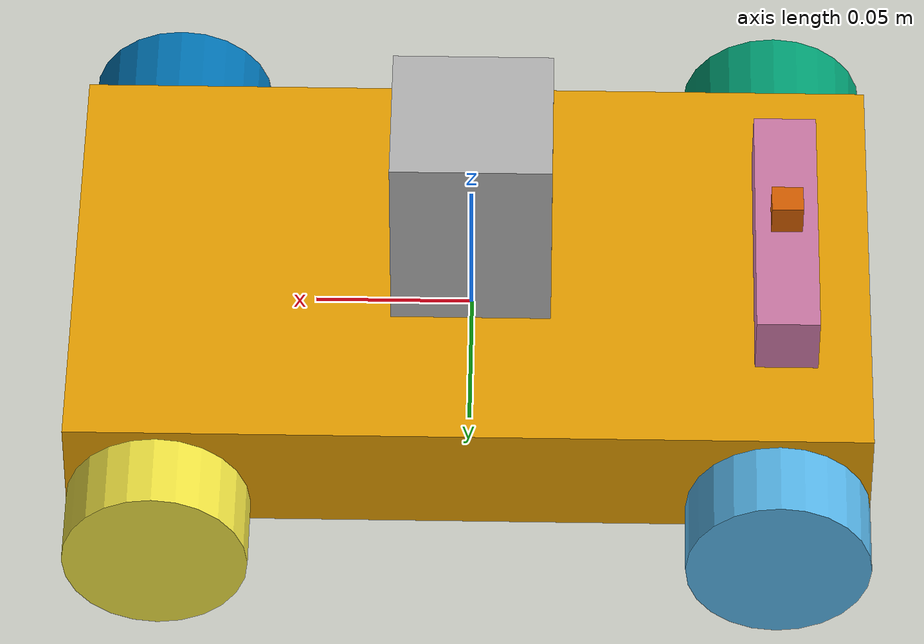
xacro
<?xml version="1.0"?>
<!-- property + name of model -->
<robot xmlns:xacro="http:www.ros.org/wiki/xacro" name= "isabelle">

<!-- CONSTANTS -->
    <xacro:property name="wheel_separation" value=""/>
    <xacro:property name="wheel_radius" value="0.02921"/>
    <xacro:property name="wheel_length" value=".0254"/>
    <xacro:property name="body_length" value="0.254"/>
    <xacro:property name="body_width" value="0.1524"/>
    <xacro:property name="body_height" value="0.04"/>
    <xacro:property name="imu_height" value=""/>
    <xacro:property name="imu_length" value=""/>
    <xacro:property name="imu_fov" value=""/>

    <xacro:macro name="default_wheel_inertial" params="mass">
            <inertial>
                    <mass value="${mass}" />
                    <mass value = ".045"/>
                <origin xyz = "0 0 0" rpy = "0 0 0"/>
                <inertia ixx = ".00007" ixy = "0" ixz = "0"
                        iyy = ".00007" iyz = "0" izz = ".000018375"/>
            </inertial>
    </xacro:macro>

<!-- CONSTANTS -->

<!-- LINKS & JOINTS -->
    <link name = "chassis">
        <visual name="visual">
            <origin xyz = "0 0 0" rpy = "0 0 0"/>
            <geometry>
                <box size = "${body_length} ${body_width} ${body_height}"/>
            </geometry>
        </visual>

        <collision name="collision">
            <origin xyz = "0 0 0" rpy = "0 0 0"/>
            <geometry>
                <box size = "${body_length} ${body_width} ${body_height}"/>
            </geometry>
        </collision>

        <inertial>
            <mass value = "0.68"/>
            <origin xyz = "0 0 0" rpy = "0 0 0"/>
            <inertia ixx = ".00140" ixy = "0" ixz = "0" iyy = ".00373" iyz = "0" izz = ".00495"/>
            <!-- inertias are tricky: http://wiki.ros.org/urdf/Tutorials/Adding%20Physical%20and%20Collision%20Properties%20to%20a%20URDF%20Model#Joint_Dynamics -->
        </inertial>

    </link>

    <!-- Back Wheels -->
    <xacro:macro name= "back_wheel" params="prefix reflect">
        <link name = "back_${prefix}_wheel">

            <visual name = "visual">
                <origin xyz = "0 0 0" rpy = "-1.5707 0 0"/>
                <geometry>
                    <cylinder radius = "${wheel_radius}" length = "${wheel_length}"/>
                </geometry>
            </visual>

            <collision name = "collision">
                <origin xyz = "0 0 0" rpy = "-1.5707 0 0"/>
                <geometry>
                    <cylinder radius = "${wheel_radius}" length = "${wheel_length}"/>
                </geometry>
            </collision>
            <xacro:default_wheel_inertial mass="0.045"/>

        </link>

        <joint name="back_${prefix}_wheel_hinge" type="continuous" >
            <parent link = "chassis"/>
            <child link = "back_${prefix}_wheel"/>
            <origin xyz ="-.09779 ${reflect * .09} -.01079" rpy = "0 0 0"/>
            <axis xyz = "0 1 0"/>
            <limit lower = "0" upper = "0" effort = "0" velocity = "0"/>
        </joint>
    </xacro:macro>
    <xacro:back_wheel prefix="right" reflect ="1"/>
    <xacro:back_wheel prefix="left" reflect ="-1"/>
    <!-- Back Wheels -->

    <!-- Front Wheels -->
     <xacro:macro name= "front_wheel" params="prefix reflect">
        <link name = "front_${prefix}_wheel">
            <visual name = "visual">
                <origin xyz = "0 0 0" rpy = "-1.5707 0 0"/>
                <geometry>
                    <cylinder radius = "${wheel_radius}" length = "${wheel_length}"/>
                </geometry>
            </visual>

            <collision name = "collision">
                <origin xyz = "0 0 0" rpy = "-1.5707 0 0"/>
                <geometry>
                    <cylinder radius = "${wheel_radius}" length = "${wheel_length}"/>
                </geometry>
            </collision>
            <xacro:default_wheel_inertial mass="0.045"/>
        </link>

        <joint name ="front_${prefix}_wheel_hinge" type = "continuous">
                <parent link = "chassis"/>
                <child link = "front_${prefix}_wheel"/>
                <origin xyz =".09779 ${reflect * .09} -.01079" rpy = "0 0 0"/>
                <axis xyz = "0 1 0"/>
                <limit lower = "0" upper = "0" effort = "0" velocity = "0"/>
        </joint>
    </xacro:macro>
    <xacro:front_wheel prefix="right" reflect ="1"/>
    <xacro:front_wheel prefix="left" reflect ="-1"/>
    <!-- Front Wheels -->

    <!-- Sensors -->

    <link name =  "imu_link">
        <pose> -0.1 0 0.1 0 0 0</pose>
        <visual>
            <geometry>
                <box size = "0.01 0.01 0.01"/>
            </geometry>
        </visual>

        <collision>
            <geometry>
                <box size = "0.01 0.01 0.01"/>
            </geometry>
        </collision>

    </link>

    <joint name = "imu_joint" type = "fixed">
        <parent link = "chassis"/>
        <child link = "imu_link"/>
        <origin xyz = "-0.1 0 0.045"/>
    </joint>

    <link name =  "camera_link">

        <visual name = "camera_visual">
            <pose> -0.1 0.0 0.03 0 0 0 </pose>
            <geometry>
                <box size = "0.02 0.09 0.02" />
            </geometry>
        </visual>

        <collision name = "camera_collision">
            <pose> -0.1 0.0 0.03 0 0 0</pose>
            <geometry>
                <box size = "0.02 0.09 0.02" />
            </geometry>
        </collision>

    </link>

    <joint name = "camera_joint" type = "fixed">
        <parent link = "chassis"/>
        <child link = "camera_link"/>
        <origin xyz = "-0.1 0.0 0.03" rpy = "1.5708 1.5708 1.5708"/>
        <axis xyz = "0 1 0"/>
        <limit lower = "0" upper = "0" effort = "0" velocity = "0"/>
    </joint>

    <link name = "hokuyo_link">

        <collision name = "hokuyo_collision">
            <pose> 0.0 0.0 0.0481 0 0 0 </pose>
            <geometry>
                <box size = "0.0508 0.0508 0.0762"/>
            </geometry>
        </collision>

        <visual name = "hokuyo_visual">
            <pose> 0.0 0.0 0.0481 0 0 0 </pose>
                <geometry>
                    <box size = "0.0508 0.0508 0.0762"/>
                </geometry>
        </visual>
    </link>

    <joint name ="hokuyo_joint" type = "fixed">
        <parent link = "chassis"/>
        <child link = "hokuyo_link"/>
        <origin xyz = "0.0 0.0 0.0481" rpy = "0 0 1.5708"/>
        <axis xyz = "0 1 0"/>
        <limit lower = "0.0" upper = "0.0" effort = "0.0" velocity = "0.0"/>
    </joint>
    <!-- Sensors -->

<!-- LINKS & JOINTS-->

 <gazebo>
    <plugin name="wb_plugin" filename="libwb_plugin.so"> </plugin>
  </gazebo>

</robot>
